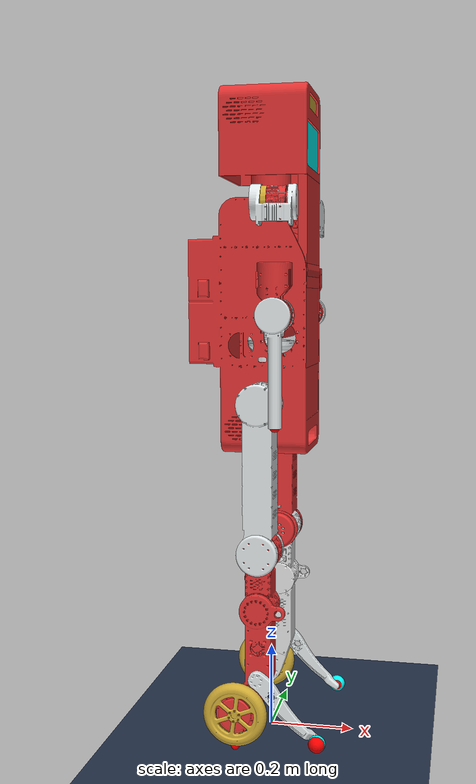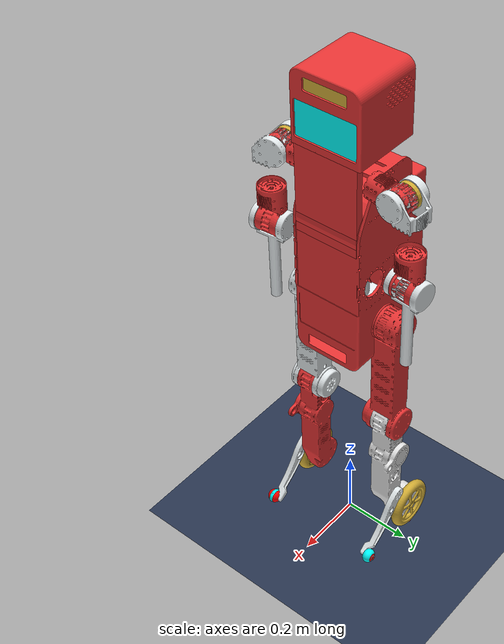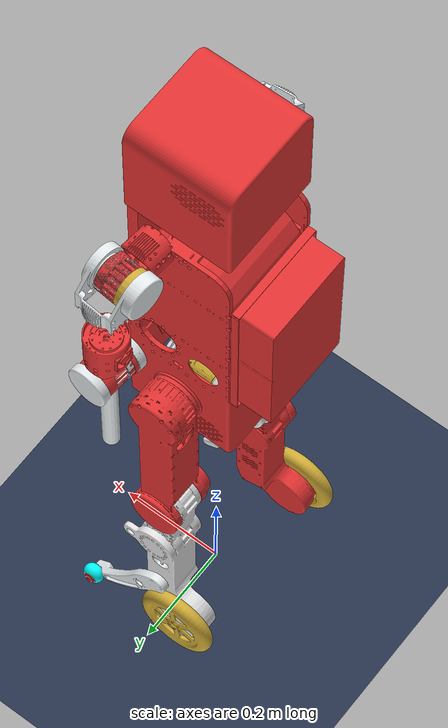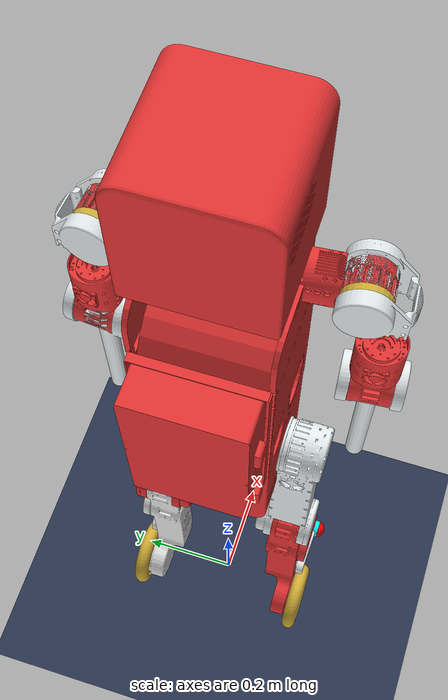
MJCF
<mujoco model="ReMahruURDF">
  <compiler angle="radian" meshdir="Meshes/" autolimits="true"/>
  <option timestep="0.001" gravity="0 0 -9.81" tolerance="1e-08" cone="elliptic" jacobian="auto" solver="CG" iterations="30" />
	<size njmax="500" nconmax="100" />

	<visual>
		<global fovy="45" linewidth="2" glow="0.3"/>
		<quality shadowsize="2048" numslices="48"/>
		<map stiffness="50" stiffnessrot="100"/>
		<scale forcewidth="0.03" contactwidth="0.15" contactheight="0.1" connect="0.1" com="0.05" jointlength="0.25" jointwidth="0.05"
					 actuatorlength="0.5" actuatorwidth="0.3" framelength="1" framewidth="0.03"/>
		<rgba haze="0.6 0.8 0.9 1" force="1 0 0 0.5" com="0 0 1 1"/>
	</visual>

	<default>
		<geom contype="1" conaffinity="1" condim="3" material="MatLink"/>
		<joint limited="false" damping="2" armature="0.1" stiffness="0" frictionloss="0.2"/>
		<motor gear="1 0 0 0 0 0" ctrllimited="false" ctrlrange="-100 100"/>
	</default>

  <asset>
    <mesh name="base_link" file="base_link.STL"/>
    <mesh name="TOP" file="TOP.STL"/>
	  <mesh name="Head" file="Head.STL"/>
    <mesh name="RA1" file="RA1.STL"/>
    <mesh name="RA2" file="RA2.STL"/>
    <mesh name="RA3" file="RA3.STL"/>
    <mesh name="RA4" file="RA4.STL"/>
    <mesh name="LA1" file="LA1.STL"/>
    <mesh name="LA2" file="LA2.STL"/>
    <mesh name="LA3" file="LA3.STL"/>
    <mesh name="LA4" file="LA4.STL"/>
    <mesh name="RL1" file="RL1.STL"/>
    <mesh name="RL2" file="RL2.STL"/>
    <mesh name="RL3" file="RL3.STL"/>
    <mesh name="RL4" file="RL4.STL"/>
    <mesh name="RW" file="RW.STL"/>
    <mesh name="LL1" file="LL1.STL"/>
    <mesh name="LL2" file="LL2.STL"/>
    <mesh name="LL3" file="LL3.STL"/>
    <mesh name="LL4" file="LL4.STL"/>
    <mesh name="LW" file="LW.STL"/>
	<mesh name="Toe" file="ToeWheel.STL"/>

	<texture name="picwheel" type="2d" builtin="none" file="Wheel-01.png"/>
	<texture name="texplane" type="2d" builtin="checker"  width="512" height="512" mark="edge" rgb1="0.2 0.3 0.4" rgb2="0.1 0.1 0.2" markrgb="1 1 1"/>

	<material name="MatGnd"   reflectance="0" specular="1" shininess="1" rgba="0 0.4 0.5 1"/>
	<material name="MatLink"  reflectance="0.5" specular="1" shininess="0.3" rgba="0.5 0.5 0.5 1"/>
	<material name="MatPlane" texture="texplane" reflectance='0.05' texrepeat="1 1" texuniform="true"/>
	<material name="MatWheel" texture="picwheel" emission="0.3" reflectance="0.3" shininess="0.5"/>

  </asset>
  <worldbody>

  	<!-- Light-->
    <light directional="true" pos=" 5 -5 5" dir="-0.5  0.5 -1" diffuse="0.3 0.3 0.3" specular="0.0 0.0 0.0" castshadow="false"/>
    <light directional="true" pos=" 5  5 5" dir="-0.5 -0.5 -1" diffuse="0.3 0.3 0.3" specular="0.0 0.0 0.0" castshadow="false"/>
    <light directional="true" pos="-5  5 5" dir=" 0.5 -0.5 -1" diffuse="0.3 0.3 0.3" specular="0.0 0.0 0.0" castshadow="false"/>
    <light directional="true" pos="-5 -5 5" dir=" 0.5  0.5 -1" diffuse="0.3 0.3 0.3" specular="0.0 0.0 0.0" castshadow="false"/>

	<!-- Ground -->
	<geom name="Ground" type="plane" pos="0 0 0" material="MatPlane" size="0 0 1" condim="3"/>

	<!-- BASE -->
    <body name="base_link" pos="0 0 0.81">
	    <freejoint name ="Floating-Base"/>
      <inertial pos="-0.00067614 -5.55e-05 0.0714295" quat="0.706127 -0.0205059 -0.0182855 0.707552"
				mass="2.28058" diaginertia="0.00672353 0.00634586 0.00411024"/>
      <geom type="mesh" rgba="0.898039 0.921569 0.929412 1" mesh="base_link"/>

	    <!-- BODY -->
      <body name="TOP" pos="0 0 0.15" euler="3.141592 0 0">
        <inertial pos="0.00283864 -0.00032488 -0.220977" quat="0.998966 -0.00444119 0.0434397 -0.0126523"
				  mass="7.32384" diaginertia="0.133429 0.125538 0.0561379"/>
		    <joint name="TOP" pos="0 0 0" axis="0 0 1" range="-0.5 0.5" limited="false"/>
        <geom type="mesh" rgba="0.9 0.2 0.2 1" mesh="TOP"/>
        <geom type="box" pos="0.09 0 -0.235" size="0.01 0.0921 0.125" rgba="0.9 0.2 0.2 1"/>
        <geom type="box" pos="0.0645 0 -0.05" euler="0 -0.455 0" size="0.001 0.0921 0.06" rgba="0.9 0.2 0.2 1"/>
        <geom type="box" pos="0.094 0 -0.427" euler="0 1.57 0" size="0.055 0.095 0.001" rgba="0 1 1 1"/>	<!-- Face -->
        <geom type="box" pos="0.094 0 -0.524" size="0.001 0.08 0.02" rgba="0.828125 0.68359375 0.21484375 1"/>	<!-- Camera -->
        <geom type="cylinder" pos="-0.0001 0 -0.15" euler="1.57 0 0" size="0.102 0.0921" rgba="0.9 0.2 0.2 1"/>
        <body name="Head" pos="0 0 0">
          <inertial pos="0 0 0" quat="0 0 0 0" mass="0" diaginertia="0 0 0"/>
          <geom type="mesh" rgba="0.9 0.2 0.2 1" mesh="Head"/>
        </body>

		    <!-- Right Arm -->
		    <body name="RA1" pos="0.047556 0.17703 -0.29" euler="-1.570796 0.087266 0">
          <inertial pos="-0.00253009 0.00062386 -0.014022" quat="0.70804 0.0165299 0.040664 0.704807"
           mass="1.33852" diaginertia="0.00206694 0.00181764 0.00115994"/>
          <joint name="RA1" pos="0 0 0" axis="0 0 1" range="-3.14 3.14" limited="true"/>
          <geom type="mesh" rgba="0.9 0.2 0.2 1" mesh="RA1"/>

          <body name="RA2" pos="0 0 0" euler="3.141592 1.570796 0">
            <inertial pos="0.0323144 0.0807497 0.00105962" quat="0.67607 0.680674 0.250737 -0.129394"
					  mass="1.32899" diaginertia="0.00335677 0.00320867 0.00125121"/>
            <joint name="RA2" pos="0 0 0" axis="0 0 1" range="-1.57 1.57" limited="true"/>
            <geom type="mesh" rgba="0.898039 0.921569 0.929412 1" mesh="RA2"/>
			      <geom type="cylinder" pos="0 0 -0.025" size="0.035 0.006" rgba="0.828125 0.68359375 0.21484375 1"/>

            <body name="RA3" pos="0.035 0.12 0" euler="-1.570796 0 -1.570796">
				      <inertial pos="6.983e-05 -0.00139846 0.100248" quat="0.999889 -0.0111503 0.00808679 0.0056701"
						  mass="1.41642" diaginertia="0.00287566 0.00258677 0.00129787"/>
              <joint name="RA3" pos="0 0 0" axis="0 0 1" range="-1.0 1.0" limited="true"/>
              <geom type="mesh" rgba="0.9 0.2 0.2 1" mesh="RA3"/>

              <body name="RA4" pos="0 0 0.12" euler="1.570592 0 0">
                <inertial pos="-0.00053779 0.0658718 0.00614697" quat="0.676625 0.734676 0.038169 -0.0311954"
						   mass="0.325331" diaginertia="0.00221643 0.00204299 0.000338785"/>
                <joint name="RA4" pos="0 0 0" axis="0 0 1" range="-3.14 3.14" limited="true"/>
                <geom name ="RA" type="mesh" rgba="0.898039 0.921569 0.929412 1" mesh="RA4"/>
			          <site name="RArm_EE" pos="0 0.24 0" size="0.012" type="sphere" rgba="1 0 0 1"/>
              </body>
            </body>
          </body>
        </body>

		    <!-- Left Arm -->
        <body name="LA1" pos="0.047556 -0.17703 -0.29" euler="1.570796 0.087266 0">
          <inertial pos="-0.00253009 -0.00062386 -0.014022" quat="0.701945 0.0406307 0.0163936 0.710882"
					mass="1.33852" diaginertia="0.00206697 0.0018176 0.00115995"/>
          <joint name="LA1" pos="0 0 0" axis="0 0 1" range="-3.14 3.14" limited="true"/>
          <geom type="mesh" rgba="0.9 0.2 0.2 1" mesh="LA1"/>

          <body name="LA2" pos="0 0 0" euler="0 1.570796 0">
            <inertial pos="-0.0323144 0.0807497 0.00105962" quat="0.67607 0.680674 -0.250737 0.129394"
					  mass="1.32899" diaginertia="0.00335677 0.00320867 0.00125121"/>
            <joint name="LA2" pos="0 0 0" axis="0 0 1" range="-3.14 3.14" limited="true"/>
            <geom type="mesh" rgba="0.898039 0.921569 0.929412 1" mesh="LA2"/>
			      <geom type="cylinder" pos="0 0 -0.025" size="0.035 0.006" rgba="0.828125 0.68359375 0.21484375 1"/>

            <body name="LA3" pos="-0.035 0.12 0" euler="-1.570796 0 -1.570796">
              <inertial pos="-6.983e-05 0.00139846 0.100248" quat="0.999889 0.0111503 0.00808679 -0.0056701"
               mass="1.41642" diaginertia="0.00287566 0.00258677 0.00129787"/>
              <joint name="LA3" pos="0 0 0" axis="0 0 1" range="-1.57 1.57" limited="true"/>
              <geom type="mesh" rgba="0.9 0.2 0.2 1" mesh="LA3"/>

              <body name="LA4" pos="0 0 0.12" euler="-1.570796 0 0">
                <inertial pos="-0.00053779 -0.0658718 0.00614697" quat="0.676625 0.734676 -0.038169 0.0311954"
                 mass="0.325331" diaginertia="0.00221643 0.00204299 0.000338785"/>
                <joint name="LA4" pos="0 0 0" axis="0 0 1" range="-0.05 1.7" limited="true"/>
                <geom name="LA" type="mesh" rgba="0.898039 0.921569 0.929412 1" mesh="LA4"/>
				        <site name="LArm_EE" pos="0 -0.24 0" size="0.012" type="sphere" rgba="1 0 0 1"/>
              </body>
            </body>
          </body>
        </body>
      </body>
      <!-- End of Top -->

	    <!-- Right Leg -->
      <body name="RL1" pos="0 -0.0405 0" euler="-1.570796 -1.570796 0">
        <inertial pos="-0.00325492 8.807e-05 0.00943272" quat="0.70432 -0.0709841 -0.0605083 0.703728"
				  mass="1.37909" diaginertia="0.00173372 0.00165486 0.00141238"/>
        <joint name="RL1" pos="0 0 0" axis="0 0 1" range="-0.1 1.57" limited="true"/>
        <geom type="mesh" rgba="0.828125 0.68359375 0.21484375 1" mesh="RL1"/>

        <body name="RL2" pos="-0.088 0 0" euler="0 1.570796 0">
          <inertial pos="-5.823e-05 0.0700867 0.247412" quat="0.69211 0.72178 0.00345192 -0.00241462"
					mass="2.58606" diaginertia="0.0389232 0.0388284 0.00354663"/>
          <joint name="RL2" pos="0 0 0" axis="0 0 1" range="-1.57 0.5" limited="true"/>
          <geom type="mesh" rgba="0.898039 0.921569 0.929412 1" mesh="RL2"/>

          <body name="RL3" pos="0 0.34 0">
            <inertial pos="-0.00805944 0.139058 -0.00700815" quat="0.632223 0.643363 -0.344969 0.259564"
					  mass="4.817" diaginertia="0.0979866 0.0951953 0.00577222"/>
            <joint name="RL3" pos="0 0 0" axis="0 0 1" range="0 1.7" limited="true"/>
            <geom type="mesh" rgba="0.9 0.2 0.2 1" mesh="RL3"/>

            <body name="RL4" pos="0 0.292 -0.049" euler="3.141592 0 -0.77649698">
              <inertial pos="0.0971152 -0.00115539 -0.00834587" quat="0.633054 0.29 0.656564 0.289942"
               mass="0.287805" diaginertia="0.00186745 0.00186698 5.8451e-05"/>
              <joint name="RL4" pos="0 0 0" axis="0 0 1" range="-0.1 0.3" limited="true"/>
              <geom name="RTW" type="mesh" rgba="0.898039 0.921569 0.929412 1" mesh="RL4"/>
			        <geom name="Toe" euler ="0 1.5708 0" pos="0.19678 0 0" type="mesh" rgba="0 1 1 1" mesh="Toe"/>
			        <site name="RToe" pos="0.19678 0 0" size="0.02" type="sphere" rgba="1 0 0 1"/>
            </body>

            <body name="RW" pos="-0.05 0.375 -0.049">
              <inertial pos="0 0 -0.0010293" quat="0.5 0.5 -0.5 0.5"
               mass="0.440501" diaginertia="0.00149999 0.00077736 0.00077736"/>
              <joint name="RW" pos="0 0 0" axis="0 0 1"/>
              <geom name="RW" type="mesh" rgba="0.828125 0.68359375 0.21484375 1" mesh="RW"/>
		          <site name="RWheel_C" pos="0 0.075 0" size="0.01" type="sphere" rgba="1 0 0 1"/>
            </body>
          </body>
        </body>
      </body>

	    <!-- Left Leg -->
      <body name="LL1" pos="0 0.0405 0" euler="-1.570796 -1.570796 0">
        <inertial pos="0.00325492 8.807e-05 0.00943272" quat="0.70432 0.0709841 0.0605083 0.703728"
				  mass="1.37909" diaginertia="0.00173372 0.00165486 0.00141238"/>
        <joint name="LL1" pos="0 0 0" axis="0 0 1" range="-1.57 0.1" limited="true"/>
        <geom type="mesh" rgba="0.828125 0.68359375 0.21484375 1" mesh="LL1"/>

        <body name="LL2" pos="0.088 0 0"  euler="3.141592 -1.570796 0">
          <inertial pos="-5.823e-05 -0.0700867 0.247412" quat="0.69211 0.72178 -0.00345192 0.00241462"
					mass="2.58606" diaginertia="0.0389232 0.0388284 0.00354663"/>
          <joint name="LL2" pos="0 0 0" axis="0 0 1" range="-0.5 1.57" limited="true"/>
          <geom type="mesh" rgba="0.9 0.2 0.2 1" mesh="LL2"/>

          <body name="LL3" pos="0 -0.34 0">
            <inertial pos="-0.00805944 -0.139058 -0.00700815" quat="0.344969 0.259564 -0.632223 0.643363"
					  mass="4.817" diaginertia="0.0979866 0.0951953 0.00577222"/>
            <joint name="LL3" pos="0 0 0" axis="0 0 1" range="-1.7 0" limited="true"/>
            <geom type="mesh" rgba="0.9 0.9 0.9 1" mesh="LL3"/>

            <body name="LL4" pos="0 -0.292 -0.049" euler="3.141592 0 0.77649698">
              <inertial pos="0.0971152 0.00115539 -0.00834587" quat="0.289942 0.656564 0.29 0.633054"
               mass="0.287805" diaginertia="0.00186745 0.00186698 5.8451e-05"/>
              <joint name="LL4" pos="0 0 0" axis="0 0 1" range="-0.3 0.1" limited="true"/>
			        <geom name="Toe2" euler ="0 1.5708 0" pos="0.19678 0 0" type="mesh" rgba="0 1 1 1" mesh="Toe"/>
              <geom type="mesh" rgba="0.898039 0.921569 0.929412 1" mesh="LL4"/>
			        <site name="LToe" pos="0.19678 0 0" size="0.017" type="sphere" rgba="1 0 0 1"/>
            </body>

            <body name="LW" pos="-0.05 -0.375 -0.049" euler="3.141592 0 0">
              <inertial pos="0 0 0.0010293" quat="0.5 0.5 -0.5 0.5"
               mass="0.440501" diaginertia="0.00149999 0.00077736 0.00077736"/>
              <joint name="LW" pos="0 0 0" axis="0 0 1"/>
			        <geom name ="LW" type="mesh" rgba="0.828125 0.68359375 0.21484375 1" mesh="LW"/>
			        <site name="LWheel_C" pos="0 0.075 0" size="0.01" type="sphere" rgba="1 0 0 1"/>
            </body>
          </body>
        </body>
      </body>
      <!-- End of Left Leg -->
    </body>
  </worldbody>
  <!-- End of Base_Link! -->
</mujoco>
